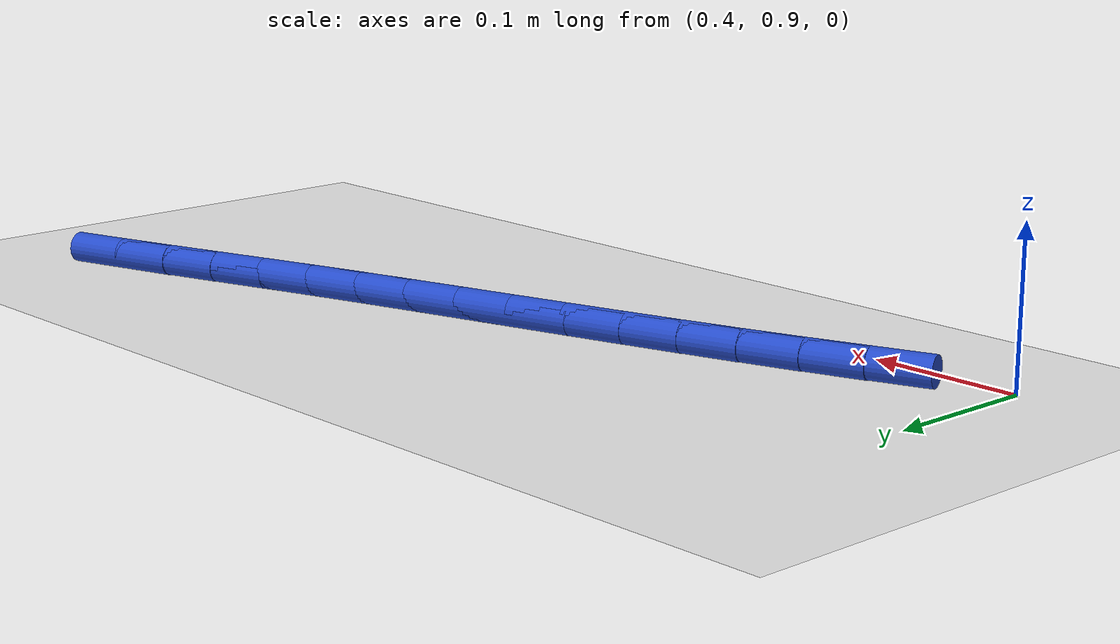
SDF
<sdf version="1.6">
 <world name="default">
  <model name="ground_plane">
   <static>1</static>
   <link name="link">
    <collision name="collision">
     <geometry><plane><normal>0 0 1</normal><size>100 100</size></plane></geometry>
     <surface><friction><ode><mu>100</mu><mu2>50</mu2></ode></friction></surface>
    </collision>
    <visual name="visual">
     <cast_shadows>0</cast_shadows>
     <geometry><plane><normal>0 0 1</normal><size>100 100</size></plane></geometry>
     <material>
      <script><uri>file://media/materials/scripts/gazebo.material</uri><name>Gazebo/WhiteGlow</name></script>
     </material>
    </visual>
   </link>
  </model>
  <model name="line">
   <link name="link_29">
    <pose>0.47600151266984514 0.9365374549677308 0.01 0 1.57 0.3533335574357472</pose>
    <collision name="collision">
     <geometry><cylinder><radius>0.01</radius><length>0.08</length></cylinder></geometry>
    </collision>
    <visual name="visual">
     <material>
      <script><name>Gazebo/Blue</name><uri>file://media/materials/scripts/gazebo.material</uri></script>
     </material>
     <geometry><cylinder><radius>0.01</radius><length>0.08</length></cylinder></geometry>
    </visual>
   </link>
   <link name="link_30">
    <pose>0.5130359048127309 0.9501961406630569 0.01 0 1.57 0.32942492397430134</pose>
    <collision name="collision">
     <geometry><cylinder><radius>0.01</radius><length>0.08</length></cylinder></geometry>
    </collision>
    <visual name="visual">
     <material>
      <script><name>Gazebo/Blue</name><uri>file://media/materials/scripts/gazebo.material</uri></script>
     </material>
     <geometry><cylinder><radius>0.01</radius><length>0.08</length></cylinder></geometry>
    </visual>
   </link>
   <link name="link_31">
    <pose>0.550269597956218 0.9629256868292702 0.01 0 1.57 0.31227396458008644</pose>
    <collision name="collision">
     <geometry><cylinder><radius>0.01</radius><length>0.08</length></cylinder></geometry>
    </collision>
    <visual name="visual">
     <material>
      <script><name>Gazebo/Blue</name><uri>file://media/materials/scripts/gazebo.material</uri></script>
     </material>
     <geometry><cylinder><radius>0.01</radius><length>0.08</length></cylinder></geometry>
    </visual>
   </link>
   <link name="link_32">
    <pose>0.5873918816709613 0.9749101198948988 0.01 0 1.57 0.3004222368947837</pose>
    <collision name="collision">
     <geometry><cylinder><radius>0.01</radius><length>0.08</length></cylinder></geometry>
    </collision>
    <visual name="visual">
     <material>
      <script><name>Gazebo/Blue</name><uri>file://media/materials/scripts/gazebo.material</uri></script>
     </material>
     <geometry><cylinder><radius>0.01</radius><length>0.08</length></cylinder></geometry>
    </visual>
   </link>
   <link name="link_33">
    <pose>0.6242438051991526 0.9863268071225759 0.01 0 1.57 0.2921180132417486</pose>
    <collision name="collision">
     <geometry><cylinder><radius>0.01</radius><length>0.08</length></cylinder></geometry>
    </collision>
    <visual name="visual">
     <material>
      <script><name>Gazebo/Blue</name><uri>file://media/materials/scripts/gazebo.material</uri></script>
     </material>
     <geometry><cylinder><radius>0.01</radius><length>0.08</length></cylinder></geometry>
    </visual>
   </link>
   <link name="link_34">
    <pose>0.6608790374420357 0.9973437860922326 0.01 0 1.57 0.2873832606052084</pose>
    <collision name="collision">
     <geometry><cylinder><radius>0.01</radius><length>0.08</length></cylinder></geometry>
    </collision>
    <visual name="visual">
     <material>
      <script><name>Gazebo/Blue</name><uri>file://media/materials/scripts/gazebo.material</uri></script>
     </material>
     <geometry><cylinder><radius>0.01</radius><length>0.08</length></cylinder></geometry>
    </visual>
   </link>
   <link name="link_35">
    <pose>0.6973671282826666 1.0081283975313928 0.01 0 1.57 0.28631972677840295</pose>
    <collision name="collision">
     <geometry><cylinder><radius>0.01</radius><length>0.08</length></cylinder></geometry>
    </collision>
    <visual name="visual">
     <material>
      <script><name>Gazebo/Blue</name><uri>file://media/materials/scripts/gazebo.material</uri></script>
     </material>
     <geometry><cylinder><radius>0.01</radius><length>0.08</length></cylinder></geometry>
    </visual>
   </link>
   <link name="link_36">
    <pose>0.7337776276041006 1.01884798216758 0.01 0 1.57 0.28896395803367747</pose>
    <collision name="collision">
     <geometry><cylinder><radius>0.01</radius><length>0.08</length></cylinder></geometry>
    </collision>
    <visual name="visual">
     <material>
      <script><name>Gazebo/Blue</name><uri>file://media/materials/scripts/gazebo.material</uri></script>
     </material>
     <geometry><cylinder><radius>0.01</radius><length>0.08</length></cylinder></geometry>
    </visual>
   </link>
   <link name="link_37">
    <pose>0.7701800852893932 1.0296698807283178 0.01 0 1.57 0.2952858270425174</pose>
    <collision name="collision">
     <geometry><cylinder><radius>0.01</radius><length>0.08</length></cylinder></geometry>
    </collision>
    <visual name="visual">
     <material>
      <script><name>Gazebo/Blue</name><uri>file://media/materials/scripts/gazebo.material</uri></script>
     </material>
     <geometry><cylinder><radius>0.01</radius><length>0.08</length></cylinder></geometry>
    </visual>
   </link>
   <link name="link_38">
    <pose>0.8066440512215998 1.0407614339411295 0.01 0 1.57 0.3051885678288169</pose>
    <collision name="collision">
     <geometry><cylinder><radius>0.01</radius><length>0.08</length></cylinder></geometry>
    </collision>
    <visual name="visual">
     <material>
      <script><name>Gazebo/Blue</name><uri>file://media/materials/scripts/gazebo.material</uri></script>
     </material>
     <geometry><cylinder><radius>0.01</radius><length>0.08</length></cylinder></geometry>
    </visual>
   </link>
   <link name="link_39">
    <pose>0.8432390752837764 1.0522899825335394 0.01 0 1.57 0.31721759130286614</pose>
    <collision name="collision">
     <geometry><cylinder><radius>0.01</radius><length>0.08</length></cylinder></geometry>
    </collision>
    <visual name="visual">
     <material>
      <script><name>Gazebo/Blue</name><uri>file://media/materials/scripts/gazebo.material</uri></script>
     </material>
     <geometry><cylinder><radius>0.01</radius><length>0.08</length></cylinder></geometry>
    </visual>
   </link>
   <link name="link_40">
    <pose>0.88002293678208 1.064366281406955 0.01 0 1.57 0.3240960358654579</pose>
    <collision name="collision">
     <geometry><cylinder><radius>0.01</radius><length>0.08</length></cylinder></geometry>
    </collision>
    <visual name="visual">
     <material>
      <script><name>Gazebo/Blue</name><uri>file://media/materials/scripts/gazebo.material</uri></script>
     </material>
     <geometry><cylinder><radius>0.01</radius><length>0.08</length></cylinder></geometry>
    </visual>
   </link>
   <link name="link_41">
    <pose>0.9169875011613049 1.0767842114191495 0.01 0 1.57 0.3234907469065928</pose>
    <collision name="collision">
     <geometry><cylinder><radius>0.01</radius><length>0.08</length></cylinder></geometry>
    </collision>
    <visual name="visual">
     <material>
      <script><name>Gazebo/Blue</name><uri>file://media/materials/scripts/gazebo.material</uri></script>
     </material>
     <geometry><cylinder><radius>0.01</radius><length>0.08</length></cylinder></geometry>
    </visual>
   </link>
   <link name="link_42">
    <pose>0.9541017030330773 1.0892274158287019 0.01 0 1.57 0.315479203527795</pose>
    <collision name="collision">
     <geometry><cylinder><radius>0.01</radius><length>0.08</length></cylinder></geometry>
    </collision>
    <visual name="visual">
     <material>
      <script><name>Gazebo/Blue</name><uri>file://media/materials/scripts/gazebo.material</uri></script>
     </material>
     <geometry><cylinder><radius>0.01</radius><length>0.08</length></cylinder></geometry>
    </visual>
   </link>
   <link name="link_43">
    <pose>0.9913344538489507 1.1013794265545507 0.01 0 1.57 0.29999644888421784</pose>
    <collision name="collision">
     <geometry><cylinder><radius>0.01</radius><length>0.08</length></cylinder></geometry>
    </collision>
    <visual name="visual">
     <material>
      <script><name>Gazebo/Blue</name><uri>file://media/materials/scripts/gazebo.material</uri></script>
     </material>
     <geometry><cylinder><radius>0.01</radius><length>0.08</length></cylinder></geometry>
    </visual>
   </link>
  </model>
 </world>
</sdf>
